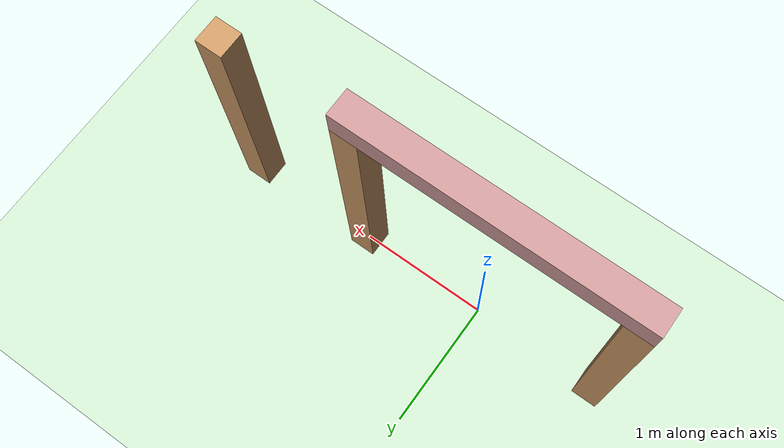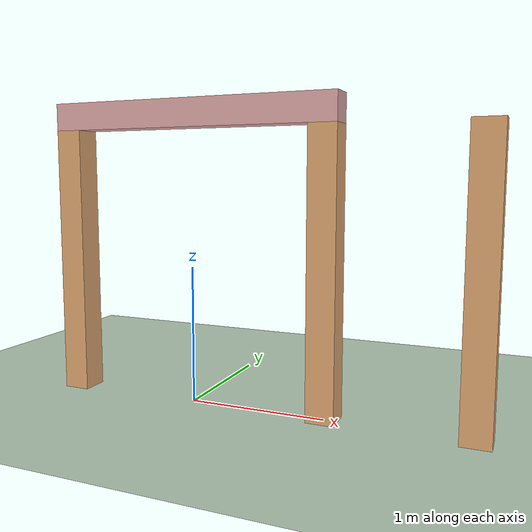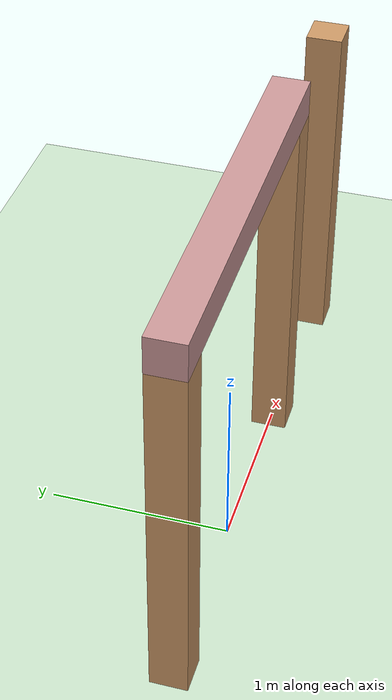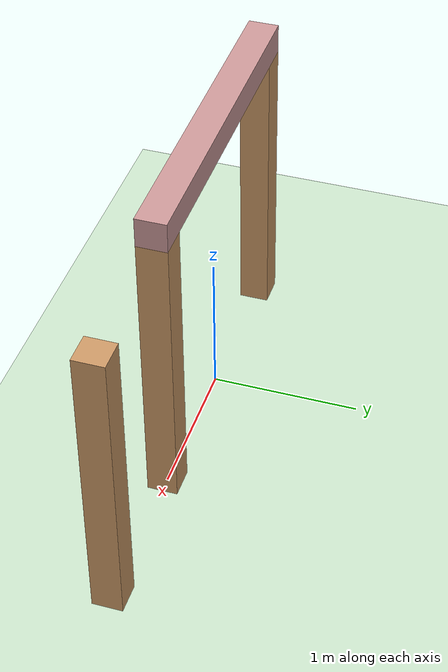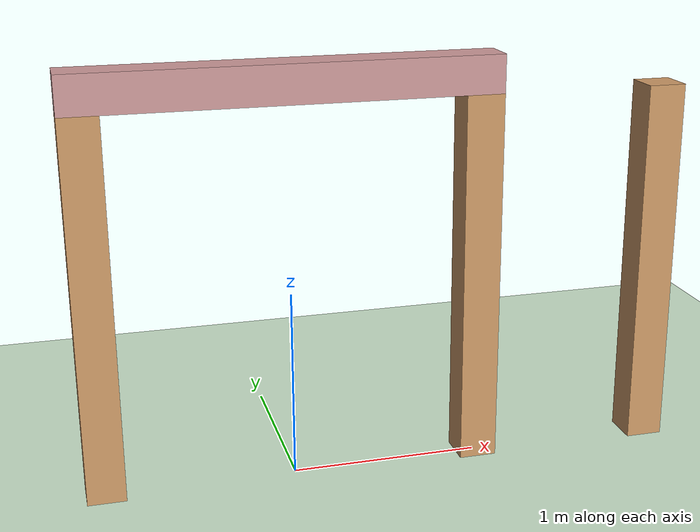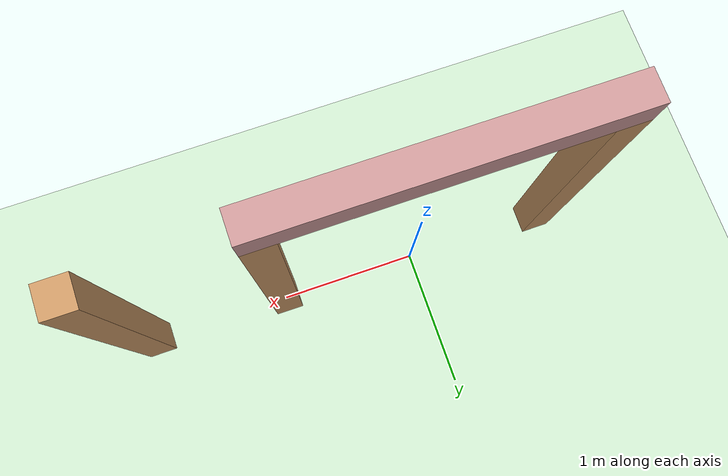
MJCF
<mujoco model="MuJoCo Model">
  <compiler angle="radian"/>

  <worldbody>
    <geom name="floor" size="5 5 0.1" type="plane" rgba="0.8 0.9 0.8 1"/>
    <body name="column1" pos="-1 0 1">
      <joint type="free" limited="false" actuatorfrclimited="false"/>
      <geom name="column1" size="0.1 0.1 1" type="box" rgba="0.8 0.6 0.4 1"/>
    </body>
    <body name="column2" pos="1 0 1">
      <joint type="free" limited="false" actuatorfrclimited="false"/>
      <geom name="column2" size="0.1 0.1 1" type="box" rgba="0.8 0.6 0.4 1"/>
    </body>
    <body name="column3" pos="2 0 1">
      <joint type="free" limited="false" actuatorfrclimited="false"/>
      <geom name="column3" size="0.1 0.1 1" type="box" rgba="0.8 0.6 0.4 1"/>
    </body>
    <body name="beam" pos="0 0 2.1">
      <joint type="free" limited="false" actuatorfrclimited="false"/>
      <geom name="beam" size="1.1 0.1 0.1" type="box" rgba="0.8 0.6 0.6 1"/>
    </body>
  </worldbody>
</mujoco>
